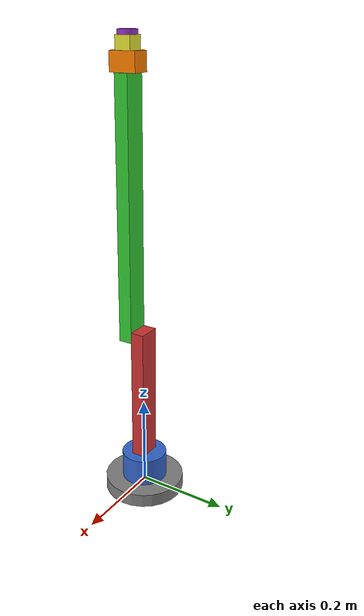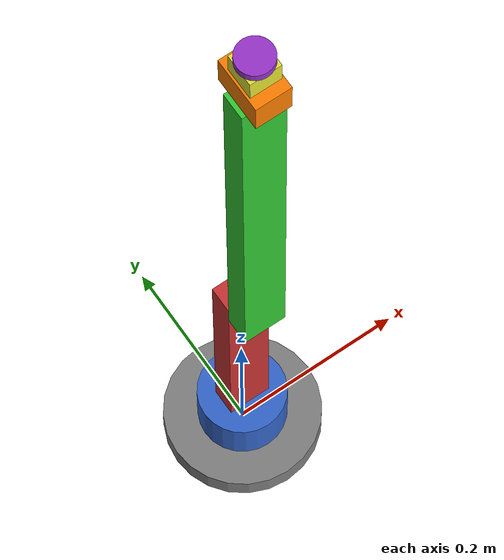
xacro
<?xml version="1.0"?>
<robot xmlns:xacro="http://www.ros.org/wiki/xacro" name="arm">
    <xacro:arg name="initial_positions_file" default="initial_positions.yaml" />
    <xacro:arg name="use_mock_hardware" default="true" />

    <!-- Import arm urdf file -->
    <xacro:include filename="$(find perseus_payloads)/src/moveit/arm.urdf" />

    <!-- Import control_xacro -->
    <xacro:include filename="arm.ros2_control.xacro" />

    <xacro:arm_ros2_control name="FakeSystem" initial_positions_file="$(arg initial_positions_file)" use_mock_hardware="$(arg use_mock_hardware)"/>

</robot>

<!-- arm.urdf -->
<robot name="arm">

  <material name="gray">
    <color rgba="0.5 0.5 0.5 1.0"/>
  </material>

  <material name="blue">
    <color rgba="0.2 0.4 0.8 1.0"/>
  </material>

  <material name="red">
    <color rgba="0.8 0.2 0.2 1.0"/>
  </material>

  <material name="green">
    <color rgba="0.2 0.8 0.2 1.0"/>
  </material>

  <material name="orange">
    <color rgba="1.0 0.5 0.0 1.0"/>
  </material>

  <material name="yellow">
    <color rgba="0.9 0.9 0.2 1.0"/>
  </material>

  <material name="purple">
    <color rgba="0.6 0.2 0.8 1.0"/>
  </material>

  <link name="plate">
    <visual>
      <geometry>
        <cylinder length="0.029471" radius="0.0885"/>
      </geometry>
      <material name="gray"/>
    </visual>
    <collision>
      <geometry>
        <cylinder length="0.029471" radius="0.0885"/>
      </geometry>
    </collision>
    <inertial>
      <mass value="0.5"/>
      <origin xyz="0 0 0" rpy="0 0 0"/>
      <inertia ixx="0.001" ixy="0.0" ixz="0.0" iyy="0.001" iyz="0.0" izz="0.001"/>
    </inertial>
  </link>

  <link name="shoulder_base">
    <visual>
      <geometry>
        <cylinder length="0.061043" radius="0.05"/>
      </geometry>
      <origin rpy="0 0 0" xyz="0 0 0.0305215"/>
      <material name="blue"/>
    </visual>
    <collision>
      <geometry>
        <cylinder length="0.061043" radius="0.05"/>
      </geometry>
      <origin rpy="0 0 0" xyz="0 0 0.0305215"/>
    </collision>
    <inertial>
      <mass value="0.8"/>
      <origin xyz="0 0 0.0305215" rpy="0 0 0"/>
      <inertia ixx="0.002" ixy="0.0" ixz="0.0" iyy="0.002" iyz="0.0" izz="0.001"/>
    </inertial>
  </link>

  <joint name="shoulder_pan" type="revolute">
    <parent link="plate"/>
    <child link="shoulder_base"/>
    <origin xyz="0 0 0.0147355" rpy="0 0 0"/>
    <axis xyz="0 0 1"/>
    <limit lower="-3.14159" upper="3.14159" effort="10.0" velocity="2.0"/>
    <dynamics damping="0.1" friction="0.05"/>
  </joint>

  <link name="shoulder_arm">
    <visual>
      <geometry>
        <box size="0.05 0.03 0.3"/>
      </geometry>
      <origin xyz="0 0 0.15" rpy="0 0 0"/>
      <material name="red"/>
    </visual>
    <collision>
      <geometry>
        <box size="0.05 0.03 0.3"/>
      </geometry>
      <origin xyz="0 0 0.15" rpy="0 0 0"/>
    </collision>
    <inertial>
      <mass value="0.6"/>
      <origin xyz="0 0 0.15" rpy="0 0 0"/>
      <inertia ixx="0.0046" ixy="0.0" ixz="0.0" iyy="0.0047" iyz="0.0" izz="0.0003"/>
    </inertial>
  </link>

  <joint name="shoulder_tilt" type="revolute">
    <parent link="shoulder_base"/>
    <child link="shoulder_arm"/>
    <origin xyz="0 0 0.061043" rpy="0 0 0"/>
    <axis xyz="0 1 0"/>
    <limit lower="-1.57" upper="1.57" effort="10.0" velocity="2.0"/>
    <dynamics damping="0.1" friction="0.05"/>
  </joint>

  <link name="forearm">
    <visual>
      <geometry>
        <box size="0.05 0.03 0.558"/>
      </geometry>
      <origin xyz="0 0 0.279" rpy="0 0 0"/>
      <material name="green"/>
    </visual>
    <collision>
      <geometry>
        <box size="0.05 0.03 0.558"/>
      </geometry>
      <origin xyz="0 0 0.279" rpy="0 0 0"/>
    </collision>
    <inertial>
      <mass value="0.5"/>
      <origin xyz="0 0 0.279" rpy="0 0 0"/>
      <inertia ixx="0.013" ixy="0.0" ixz="0.0" iyy="0.013" iyz="0.0" izz="0.0002"/>
    </inertial>
  </link>

  <joint name="elbow" type="revolute">
    <parent link="shoulder_arm"/>
    <child link="forearm"/>
    <origin xyz="0 -0.03 0.275" rpy="0 0 0"/>
    <axis xyz="0 1 0"/>
    <limit lower="-3.14159" upper="3.14159" effort="8.0" velocity="2.0"/>
    <dynamics damping="0.1" friction="0.05"/>
  </joint>

  <link name="forearm_tip">
    <visual>
        <geometry>
            <sphere radius="0.01"/>
        </geometry>
        <material name="purple"/>
    </visual>
    <collision>
        <geometry>
            <sphere radius="0.01"/>
        </geometry>
    </collision>
    <inertial>
        <mass value="0.001"/>
        <origin xyz="0 0 0" rpy="0 0 0"/>
        <inertia ixx="0.000001" ixy="0.0" ixz="0.0" iyy="0.000001" iyz="0.0" izz="0.000001"/>
    </inertial>
</link>

<joint name="forearm_tip_joint" type="fixed">
    <parent link="forearm"/>
    <child link="forearm_tip"/>
    <origin xyz="0 0 0.558" rpy="0 0 0"/>  <!-- At end of forearm -->
</joint>

  <link name="wrist_pitch_link">
    <visual>
      <geometry>
        <box size="0.04 0.06 0.04"/>
      </geometry>
      <origin xyz="0 0 0.02" rpy="0 0 0"/>
      <material name="orange"/>
    </visual>
    <collision>
      <geometry>
        <box size="0.04 0.06 0.04"/>
      </geometry>
      <origin xyz="0 0 0.02" rpy="0 0 0"/>
    </collision>
    <inertial>
      <mass value="0.2"/>
      <origin xyz="0 0 0.02" rpy="0 0 0"/>
      <inertia ixx="0.0001" ixy="0.0" ixz="0.0" iyy="0.00001" iyz="0.0" izz="0.0001"/>
    </inertial>
  </link>

  <joint name="wrist_pitch" type="revolute">
    <parent link="forearm"/>
    <child link="wrist_pitch_link"/>
    <origin xyz="0 0 0.558" rpy="0 0 0"/>
    <axis xyz="0 1 0"/>
    <limit lower="-1.57" upper="1.57" effort="5.0" velocity="3.0"/>
    <dynamics damping="0.05" friction="0.02"/>
  </joint>

  <link name="wrist_roll_link">
    <visual>
      <geometry>
        <box size="0.035 0.035 0.028"/>
      </geometry>
      <origin xyz="0 0 0.014" rpy="0 0 0"/>
      <material name="yellow"/>
    </visual>
    <collision>
      <geometry>
        <box size="0.035 0.035 0.028"/>
      </geometry>
      <origin xyz="0 0 0.014" rpy="0 0 0"/>
    </collision>
    <inertial>
      <mass value="0.15"/>
      <origin xyz="0 0 0.014" rpy="0 0 0"/>
      <inertia ixx="0.00005" ixy="0.0" ixz="0.0" iyy="0.00005" iyz="0.0" izz="0.00004"/>
    </inertial>
  </link>

  <joint name="wrist_roll" type="revolute">
    <parent link="wrist_pitch_link"/>
    <child link="wrist_roll_link"/>
    <origin xyz="0 0 0.04" rpy="0 0 0"/>
    <axis xyz="0 0 1"/>
    <limit lower="-3.14159" upper="3.14159" effort="10.0" velocity="2.0"/>
    <dynamics damping="0.05" friction="0.02"/>
  </joint>

  <link name="fake_dof_link">
    <visual>
      <geometry>
        <sphere radius="0.005"/>
      </geometry>
      <material name="gray"/>
    </visual>
    <collision>
      <geometry>
        <sphere radius="0.005"/>
      </geometry>
    </collision>
    <inertial>
      <mass value="0.001"/>
      <origin xyz="0 0 0" rpy="0 0 0"/>
      <inertia ixx="0.000001" ixy="0.0" ixz="0.0" iyy="0.000001" iyz="0.0" izz="0.000001"/>
    </inertial>
  </link>

  <joint name="fake_dof" type="revolute">
    <parent link="wrist_roll_link"/>
    <child link="fake_dof_link"/>
    <origin xyz="0 0 0.028" rpy="0 0 0"/>
    <axis xyz="1 0 0"/>
    <limit lower="-1.57" upper="1.57" effort="1.0" velocity="1.0"/>
    <dynamics damping="0.01" friction="0.0"/>
  </joint>

  <link name="end_effector">
    <visual>
      <geometry>
        <cylinder length="0.01" radius="0.02"/>
      </geometry>
      <origin xyz="0 0 0.005" rpy="0 0 0"/>
      <material name="purple"/>
    </visual>
    <collision>
      <geometry>
        <cylinder length="0.01" radius="0.02"/>
      </geometry>
      <origin xyz="0 0 0.005" rpy="0 0 0"/>
    </collision>
    <inertial>
      <mass value="0.05"/>
      <origin xyz="0 0 0.005" rpy="0 0 0"/>
      <inertia ixx="0.00001" ixy="0.0" ixz="0.0" iyy="0.00001" iyz="0.0" izz="0.00001"/>
    </inertial>
  </link>

  <joint name="end_effector_mount" type="fixed">
    <parent link="fake_dof_link"/>
    <child link="end_effector"/>
    <origin xyz="0 0 0" rpy="0 0 0"/>
  </joint>
</robot>
